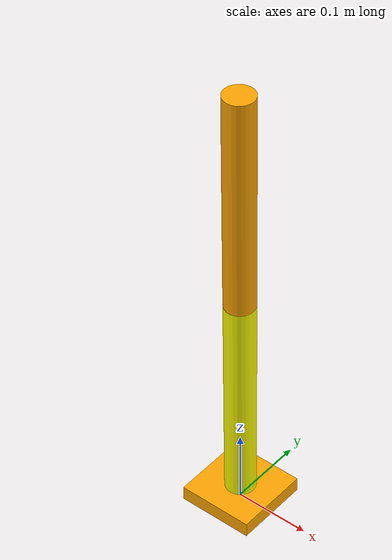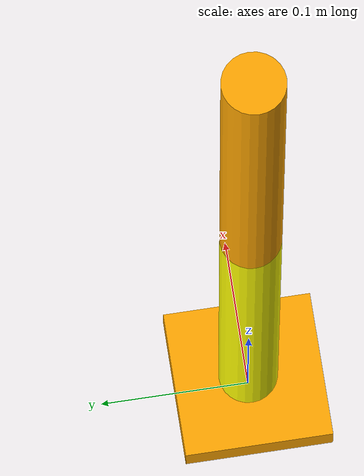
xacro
<?xml version="1.0"?>
<robot name="arm" xmlns:xacro="http://www.ros.org/wiki/xacro">

  <xacro:include filename = "common_properties.xacro" />

  <xacro:include filename = "arm.xacro" />

<!--   This is the main file for robot which include other files specific for different components of the robot    -->
<!-- here sequence of including files is important -->
</robot>

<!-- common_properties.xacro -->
<robot xmlns:xacro="http://www.ros.org/wiki/xacro">

    <material name="blue">
        <color rgba="0 0 0.5 1" />
    </material>

    <material name="grey">
        <color rgba="0.5 0.5 0.5 1" />
    </material>

    <material name="orange">
        <color rgba="1 0.65 0 1" />
    </material>

    <material name="yellow">
        <color rgba="1 1 0 1" />
    </material>

    <xacro:macro name="box_inertia" params="m l w h xyz rpy">
        <inertial>
            <origin xyz="${xyz}" rpy="${rpy}" />
            <mass value="${m}" />
            <inertia ixx="${(m/12) * (h*h + l*l)}" ixy="0" ixz="0"
                     iyy="${(m/12) * (w*w + l*l)}" iyz="0"
                     izz="${(m/12) * (w*w + h*h)}" />
        </inertial>
    </xacro:macro>

    <xacro:macro name="cylinder_inertia" params="m r h xyz rpy">
        <inertial>
            <origin xyz="${xyz}" rpy="${rpy}" />
            <mass value="${m}" />
            <inertia ixx="${(m/12) * (3*r*r + h*h)}" ixy="0" ixz="0"
                     iyy="${(m/12) * (3*r*r + h*h)}" iyz="0"
                     izz="${(m/2) * (r*r)}" />
        </inertial>
    </xacro:macro>

    <xacro:macro name="sphere_inertia" params="m r xyz rpy">
        <inertial>
            <origin xyz="${xyz}" rpy="${rpy}" />
            <mass value="${m}" />
            <inertia ixx="${(2/5) * m * r * r}" ixy="0" ixz="0"
                     iyy="${(2/5) * m * r * r}" iyz="0"
                     izz="${(2/5) * m * r * r}" />
        </inertial>
    </xacro:macro>

</robot>

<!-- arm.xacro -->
<robot xmlns:xacro="http://www.ros.org/wiki/xacro">

    <xacro:property name="base_length" value="0.1" />
    <xacro:property name="base_width" value="0.1" />
    <xacro:property name="base_height" value="0.02" />
    <xacro:property name="cylinder_radius" value="0.02" />
    <xacro:property name="cylinder_length" value="0.3" />

    <link name="arm_base_link">
        <visual>
            <geometry>
                <box size="${base_length} ${base_width} ${base_height}" />
            </geometry>
            <origin xyz="0 0 ${base_height/2.0}" rpy="0 0 0" />
            <material name="orange" />
        </visual>
        <collision>
            <geometry>
                <box size="${base_length} ${base_width} ${base_height}" />
            </geometry>
            <origin xyz="0 0 ${base_height/2.0}" rpy="0 0 0" />
        </collision>
        <xacro:box_inertia m="0.5" l="${2*base_length}" w="${2*base_width}" h="${2*base_height}"
                           xyz="0 0 ${base_height/2.0}" rpy="0 0 0" />
    </link>

    <link name="forearm_link">
      <visual>
        <geometry>
          <cylinder radius="${cylinder_radius}" length="${cylinder_length}" />
        </geometry>
        <origin xyz="0 0 ${cylinder_length/2.0}" rpy="0 0 0" />
        <material name="yellow" />
      </visual>
      <collision>
         <geometry>
          <cylinder radius="${cylinder_radius}" length="${cylinder_length}" />
        </geometry>
        <origin xyz="0 0 ${cylinder_length/2.0}" rpy="0 0 0" />
      </collision>
      <xacro:cylinder_inertia m="0.3" r="${2*cylinder_radius}" h="${2*cylinder_length}"
                                    xyz="0 0 ${cylinder_length/2.0}" rpy="0 0 0" />
    </link>

    <link name="hand_link">
      <visual>
        <geometry>
          <cylinder radius="${cylinder_radius}" length="${cylinder_length}" />
        </geometry>
        <origin xyz="0 0 ${cylinder_length/2.0}" rpy="0 0 0" />
        <material name="orange" />
      </visual>
      <collision>
         <geometry>
          <cylinder radius="${cylinder_radius}" length="${cylinder_length}" />
        </geometry>
        <origin xyz="0 0 ${cylinder_length/2.0}" rpy="0 0 0" />
      </collision>
      <xacro:cylinder_inertia m="0.3" r="${2*cylinder_radius}" h="${2*cylinder_length}"
                                    xyz="0 0 ${cylinder_length/2.0}" rpy="0 0 0" />
    </link>

    <joint name="base_forearm" type="revolute">
      <parent link="arm_base_link"/>
      <child link="forearm_link"/>
      <origin xyz="0 0 0.015" rpy="0 0 0"/>
      <dynamics damping="0.1" friction="0.05" />
      <axis xyz="0 1 0" />
      <limit effort="100" velocity="100" lower="0" upper="${pi/2.0}" />
      </joint>

    <joint name="forearm_hand" type="revolute">
      <parent link="forearm_link"/>
      <child link="hand_link"/>
      <origin xyz="0 0 0.3" rpy="0 0 0"/>
      <dynamics damping="0.1" friction="0.05" />
      <axis xyz="0 1 0" />
      <limit effort="100" velocity="100" lower="0" upper="${pi/2.0}" />
      </joint>

    <gazebo reference="arm_base_link">
        <material>Gazebo/Orange</material>
    </gazebo>

    <gazebo reference="forearm_link">
        <material>Gazebo/Yellow</material>
    </gazebo>

    <gazebo reference="hand_link">
        <material>Gazebo/Orange</material>
    </gazebo>

    <gazebo>
      <plugin name="gazebo_ros_joint_state_publisher"
          filename="libgazebo_ros_joint_state_publisher.so">

        <!-- Update rate in Hertz -->
        <update_rate>10</update_rate>

        <!-- Name of joints in the model whose states will be published. -->
        <joint_name>base_forearm</joint_name>
        <joint_name>forearm_hand</joint_name>

      </plugin>
    </gazebo>

    <gazebo>
       <plugin name="gazebo_ros_joint_pose_trajectory"
           filename="libgazebo_ros_joint_pose_trajectory.so">

         <!-- Update rate in Hz -->
         <update_rate>2</update_rate>

       </plugin>
    </gazebo>

</robot>
